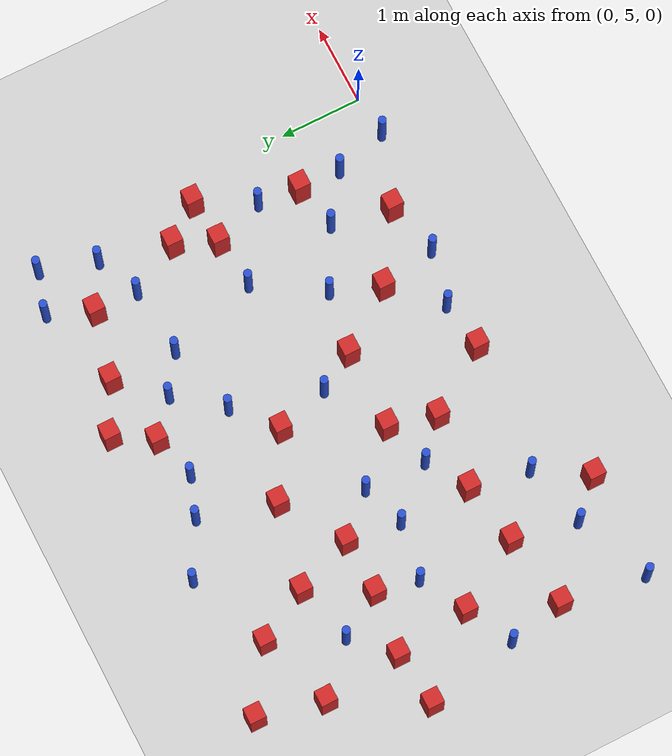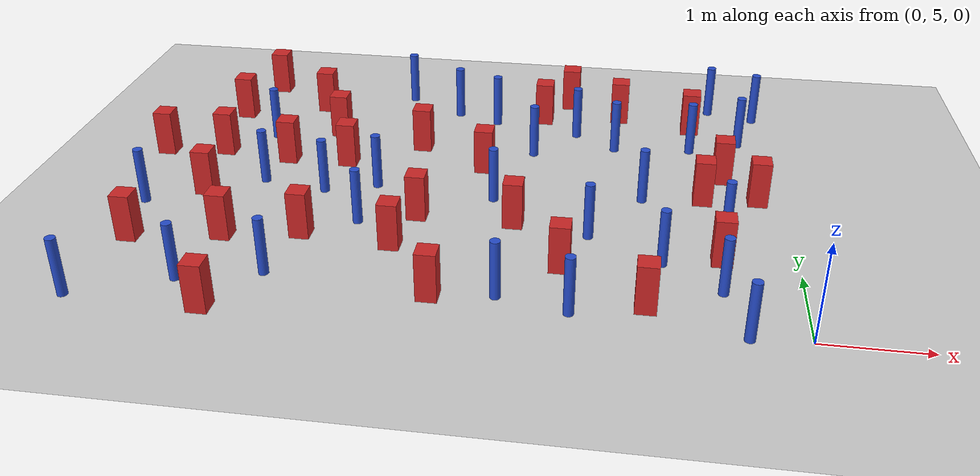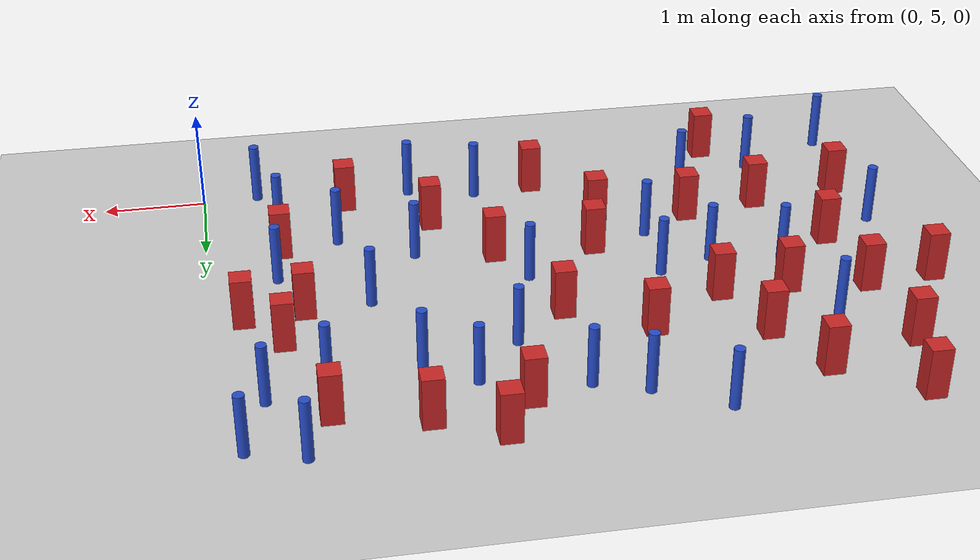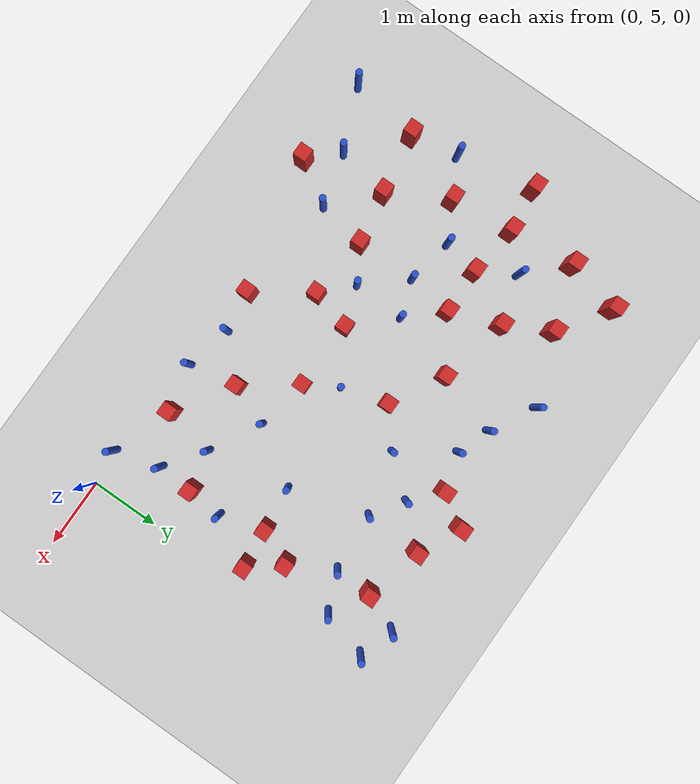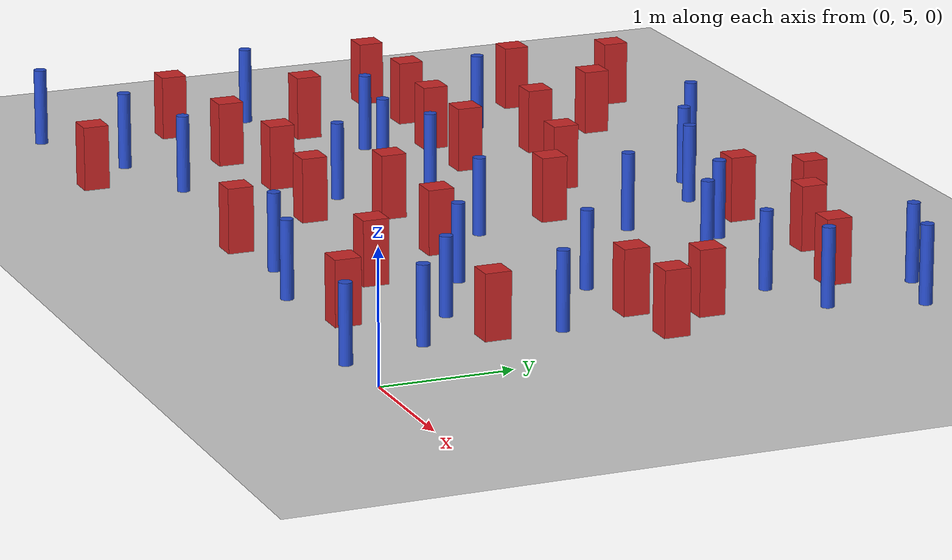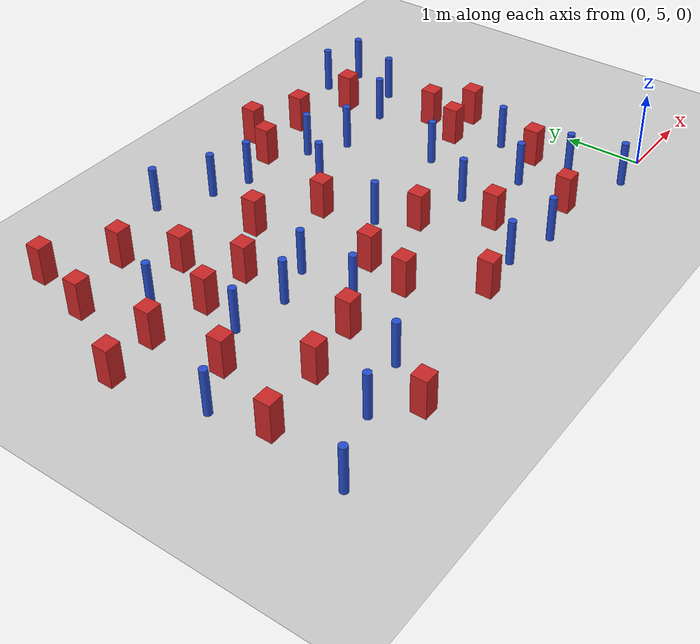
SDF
<sdf version="1.6">
 <world name="default">
  <model name="ground_plane">
   <static>1</static>
   <link name="link">
    <collision name="collision">
     <geometry><plane><normal>0 0 1</normal><size>100 100</size></plane></geometry>
     <surface><friction><ode><mu>100</mu><mu2>50</mu2></ode></friction></surface>
    </collision>
    <visual name="visual">
     <cast_shadows>0</cast_shadows>
     <geometry><plane><normal>0 0 1</normal><size>100 100</size></plane></geometry>
     <material>
      <ambient>1.0 1.0 1.0 1.0</ambient>
      <diffuse>0.8 0.8 0.8 1.0</diffuse>
      <specular>0.01 0.01 0.01 1.000000</specular>
     </material>
    </visual>
   </link>
  </model>
  <model name="square_post_obstacle0">
   <static>true</static>
   <pose>-5.34612675262 4.74920130066 -6.11067671241e-07 -5.50515727128e-06 -8.79689657224e-07 2.37013304536e-05</pose>
   <link name="link">
    <pose>0 0 0.25 0 -0 0</pose>
    <inertial>
     <mass>100</mass>
     <inertia>
      <ixx>0.166667</ixx>
      <ixy>0</ixy>
      <ixz>0</ixz>
      <iyy>0.166667</iyy>
      <iyz>0</iyz>
      <izz>0.166667</izz>
     </inertia>
    </inertial>
    <collision name="collision"><geometry><box><size>.2 .2 .5</size></box></geometry></collision>
    <visual name="visual">
     <geometry><box><size>.2 .2 .5</size></box></geometry>
     <material>
      <script><name>Gazebo/Red</name><uri>file://media/materials/scripts/gazebo.material</uri></script>
     </material>
    </visual>
   </link>
  </model>
  <model name="square_post_obstacle1">
   <static>true</static>
   <pose>-2.77302818829 6.5551887884 -6.11067671241e-07 -5.50515727128e-06 -8.79689657224e-07 2.37013304536e-05</pose>
   <link name="link">
    <pose>0 0 0.25 0 -0 0</pose>
    <inertial>
     <mass>100</mass>
     <inertia>
      <ixx>0.166667</ixx>
      <ixy>0</ixy>
      <ixz>0</ixz>
      <iyy>0.166667</iyy>
      <iyz>0</iyz>
      <izz>0.166667</izz>
     </inertia>
    </inertial>
    <collision name="collision"><geometry><box><size>.2 .2 .5</size></box></geometry></collision>
    <visual name="visual">
     <geometry><box><size>.2 .2 .5</size></box></geometry>
     <material>
      <script><name>Gazebo/Red</name><uri>file://media/materials/scripts/gazebo.material</uri></script>
     </material>
    </visual>
   </link>
  </model>
  <model name="pole_obstacle13">
   <static>true</static>
   <pose>-2.77437427752 5.27815856419 -9.47619616065e-06 5.49618799738e-07 2.3631041406e-07 -1.55090534801e-07</pose>
   <link name="link">
    <pose>0 0 0.3 0 -0 0</pose>
    <inertial>
     <mass>1</mass>
     <inertia><ixx>0.145833</ixx><ixy>0</ixy><ixz>0</ixz><iyy>0.145833</iyy><iyz>0</iyz><izz>0.125</izz></inertia>
    </inertial>
    <collision name="collision">
     <geometry><cylinder><radius>0.05</radius><length>.6</length></cylinder></geometry>
    </collision>
    <visual name="visual">
     <geometry><cylinder><radius>0.05</radius><length>.6</length></cylinder></geometry>
     <material>
      <script><name>Gazebo/Blue</name><uri>file://media/materials/scripts/gazebo.material</uri></script>
     </material>
    </visual>
   </link>
  </model>
  <model name="square_post_obstacle12">
   <static>true</static>
   <pose>-1.43123995148 5.29667746574 -6.11067671241e-07 -5.50515727128e-06 -8.79689657224e-07 2.37013304536e-05</pose>
   <link name="link">
    <pose>0 0 0.25 0 -0 0</pose>
    <inertial>
     <mass>100</mass>
     <inertia>
      <ixx>0.166667</ixx>
      <ixy>0</ixy>
      <ixz>0</ixz>
      <iyy>0.166667</iyy>
      <iyz>0</iyz>
      <izz>0.166667</izz>
     </inertia>
    </inertial>
    <collision name="collision"><geometry><box><size>.2 .2 .5</size></box></geometry></collision>
    <visual name="visual">
     <geometry><box><size>.2 .2 .5</size></box></geometry>
     <material>
      <script><name>Gazebo/Red</name><uri>file://media/materials/scripts/gazebo.material</uri></script>
     </material>
    </visual>
   </link>
  </model>
  <model name="square_post_obstacle15">
   <static>true</static>
   <pose>-5.35787240034 8.94793512764 -6.11067671241e-07 -5.50515727128e-06 -8.79689657224e-07 2.37013304536e-05</pose>
   <link name="link">
    <pose>0 0 0.25 0 -0 0</pose>
    <inertial>
     <mass>100</mass>
     <inertia>
      <ixx>0.166667</ixx>
      <ixy>0</ixy>
      <ixz>0</ixz>
      <iyy>0.166667</iyy>
      <iyz>0</iyz>
      <izz>0.166667</izz>
     </inertia>
    </inertial>
    <collision name="collision"><geometry><box><size>.2 .2 .5</size></box></geometry></collision>
    <visual name="visual">
     <geometry><box><size>.2 .2 .5</size></box></geometry>
     <material>
      <script><name>Gazebo/Red</name><uri>file://media/materials/scripts/gazebo.material</uri></script>
     </material>
    </visual>
   </link>
  </model>
  <model name="pole_obstacle21">
   <static>true</static>
   <pose>-1.29164633985 6.02613737282 -9.47619616065e-06 5.49618799737e-07 2.36310414061e-07 -1.550905348e-07</pose>
   <link name="link">
    <pose>0 0 0.3 0 -0 0</pose>
    <inertial>
     <mass>1</mass>
     <inertia><ixx>0.145833</ixx><ixy>0</ixy><ixz>0</ixz><iyy>0.145833</iyy><iyz>0</iyz><izz>0.125</izz></inertia>
    </inertial>
    <collision name="collision">
     <geometry><cylinder><radius>0.05</radius><length>.6</length></cylinder></geometry>
    </collision>
    <visual name="visual">
     <geometry><cylinder><radius>0.05</radius><length>.6</length></cylinder></geometry>
     <material>
      <script><name>Gazebo/Blue</name><uri>file://media/materials/scripts/gazebo.material</uri></script>
     </material>
    </visual>
   </link>
  </model>
  <model name="square_post_obstacle34">
   <static>true</static>
   <pose>-5.01430489919 8.31222647679 -6.11067671241e-07 -5.50515727128e-06 -8.79689657224e-07 2.37013304536e-05</pose>
   <link name="link">
    <pose>0 0 0.25 0 -0 0</pose>
    <inertial>
     <mass>100</mass>
     <inertia>
      <ixx>0.166667</ixx>
      <ixy>0</ixy>
      <ixz>0</ixz>
      <iyy>0.166667</iyy>
      <iyz>0</iyz>
      <izz>0.166667</izz>
     </inertia>
    </inertial>
    <collision name="collision"><geometry><box><size>.2 .2 .5</size></box></geometry></collision>
    <visual name="visual">
     <geometry><box><size>.2 .2 .5</size></box></geometry>
     <material>
      <script><name>Gazebo/Red</name><uri>file://media/materials/scripts/gazebo.material</uri></script>
     </material>
    </visual>
   </link>
  </model>
  <model name="pole_obstacle52">
   <static>true</static>
   <pose>-0.45498013856 8.62824395358 -9.47619616065e-06 5.49618799737e-07 2.36310414049e-07 -1.55090534807e-07</pose>
   <link name="link">
    <pose>0 0 0.3 0 -0 0</pose>
    <inertial>
     <mass>1</mass>
     <inertia><ixx>0.145833</ixx><ixy>0</ixy><ixz>0</ixz><iyy>0.145833</iyy><iyz>0</iyz><izz>0.125</izz></inertia>
    </inertial>
    <collision name="collision">
     <geometry><cylinder><radius>0.05</radius><length>.6</length></cylinder></geometry>
    </collision>
    <visual name="visual">
     <geometry><cylinder><radius>0.05</radius><length>.6</length></cylinder></geometry>
     <material>
      <script><name>Gazebo/Blue</name><uri>file://media/materials/scripts/gazebo.material</uri></script>
     </material>
    </visual>
   </link>
  </model>
  <model name="pole_obstacle56">
   <static>true</static>
   <pose>-0.666703236352 6.658566301 -9.47619616065e-06 5.49618799737e-07 2.36310414065e-07 -1.55090534796e-07</pose>
   <link name="link">
    <pose>0 0 0.3 0 -0 0</pose>
    <inertial>
     <mass>1</mass>
     <inertia><ixx>0.145833</ixx><ixy>0</ixy><ixz>0</ixz><iyy>0.145833</iyy><iyz>0</iyz><izz>0.125</izz></inertia>
    </inertial>
    <collision name="collision">
     <geometry><cylinder><radius>0.05</radius><length>.6</length></cylinder></geometry>
    </collision>
    <visual name="visual">
     <geometry><cylinder><radius>0.05</radius><length>.6</length></cylinder></geometry>
     <material>
      <script><name>Gazebo/Blue</name><uri>file://media/materials/scripts/gazebo.material</uri></script>
     </material>
    </visual>
   </link>
  </model>
  <model name="pole_obstacle59">
   <static>true</static>
   <pose>-3.24799712277 8.82798915119 -9.47619616065e-06 5.49618799738e-07 2.36310414059e-07 -1.55090534802e-07</pose>
   <link name="link">
    <pose>0 0 0.3 0 -0 0</pose>
    <inertial>
     <mass>1</mass>
     <inertia><ixx>0.145833</ixx><ixy>0</ixy><ixz>0</ixz><iyy>0.145833</iyy><iyz>0</iyz><izz>0.125</izz></inertia>
    </inertial>
    <collision name="collision">
     <geometry><cylinder><radius>0.05</radius><length>.6</length></cylinder></geometry>
    </collision>
    <visual name="visual">
     <geometry><cylinder><radius>0.05</radius><length>.6</length></cylinder></geometry>
     <material>
      <script><name>Gazebo/Blue</name><uri>file://media/materials/scripts/gazebo.material</uri></script>
     </material>
    </visual>
   </link>
  </model>
  <model name="pole_obstacle63">
   <static>true</static>
   <pose>-3.72546606335 9.00201189004 -9.47619616065e-06 5.49618799738e-07 2.36310414059e-07 -1.55090534802e-07</pose>
   <link name="link">
    <pose>0 0 0.3 0 -0 0</pose>
    <inertial>
     <mass>1</mass>
     <inertia><ixx>0.145833</ixx><ixy>0</ixy><ixz>0</ixz><iyy>0.145833</iyy><iyz>0</iyz><izz>0.125</izz></inertia>
    </inertial>
    <collision name="collision">
     <geometry><cylinder><radius>0.05</radius><length>.6</length></cylinder></geometry>
    </collision>
    <visual name="visual">
     <geometry><cylinder><radius>0.05</radius><length>.6</length></cylinder></geometry>
     <material>
      <script><name>Gazebo/Blue</name><uri>file://media/materials/scripts/gazebo.material</uri></script>
     </material>
    </visual>
   </link>
  </model>
  <model name="square_post_obstacle58">
   <static>true</static>
   <pose>-3.9945290186 8.08801539437 -6.11067671241e-07 -5.50515727128e-06 -8.79689657224e-07 2.37013304536e-05</pose>
   <link name="link">
    <pose>0 0 0.25 0 -0 0</pose>
    <inertial>
     <mass>100</mass>
     <inertia>
      <ixx>0.166667</ixx>
      <ixy>0</ixy>
      <ixz>0</ixz>
      <iyy>0.166667</iyy>
      <iyz>0</iyz>
      <izz>0.166667</izz>
     </inertia>
    </inertial>
    <collision name="collision"><geometry><box><size>.2 .2 .5</size></box></geometry></collision>
    <visual name="visual">
     <geometry><box><size>.2 .2 .5</size></box></geometry>
     <material>
      <script><name>Gazebo/Red</name><uri>file://media/materials/scripts/gazebo.material</uri></script>
     </material>
    </visual>
   </link>
  </model>
  <model name="square_post_obstacle61">
   <static>true</static>
   <pose>-2.24261961663 5.82881740338 -6.11067671241e-07 -5.50515727128e-06 -8.79689657224e-07 2.37013304536e-05</pose>
   <link name="link">
    <pose>0 0 0.25 0 -0 0</pose>
    <inertial>
     <mass>100</mass>
     <inertia>
      <ixx>0.166667</ixx>
      <ixy>0</ixy>
      <ixz>0</ixz>
      <iyy>0.166667</iyy>
      <iyz>0</iyz>
      <izz>0.166667</izz>
     </inertia>
    </inertial>
    <collision name="collision"><geometry><box><size>.2 .2 .5</size></box></geometry></collision>
    <visual name="visual">
     <geometry><box><size>.2 .2 .5</size></box></geometry>
     <material>
      <script><name>Gazebo/Red</name><uri>file://media/materials/scripts/gazebo.material</uri></script>
     </material>
    </visual>
   </link>
  </model>
  <model name="pole_obstacle72">
   <static>true</static>
   <pose>-0.54581152563 4.97030070572 -9.47619616065e-06 5.49618799737e-07 2.36310414069e-07 -1.55090534794e-07</pose>
   <link name="link">
    <pose>0 0 0.3 0 -0 0</pose>
    <inertial>
     <mass>1</mass>
     <inertia><ixx>0.145833</ixx><ixy>0</ixy><ixz>0</ixz><iyy>0.145833</iyy><iyz>0</iyz><izz>0.125</izz></inertia>
    </inertial>
    <collision name="collision">
     <geometry><cylinder><radius>0.05</radius><length>.6</length></cylinder></geometry>
    </collision>
    <visual name="visual">
     <geometry><cylinder><radius>0.05</radius><length>.6</length></cylinder></geometry>
     <material>
      <script><name>Gazebo/Blue</name><uri>file://media/materials/scripts/gazebo.material</uri></script>
     </material>
    </visual>
   </link>
  </model>
  <model name="square_post_obstacle68">
   <static>true</static>
   <pose>-0.665074424323 7.77180806477 -6.11067671241e-07 -5.50515727128e-06 -8.79689657224e-07 2.37013304536e-05</pose>
   <link name="link">
    <pose>0 0 0.25 0 -0 0</pose>
    <inertial>
     <mass>100</mass>
     <inertia>
      <ixx>0.166667</ixx>
      <ixy>0</ixy>
      <ixz>0</ixz>
      <iyy>0.166667</iyy>
      <iyz>0</iyz>
      <izz>0.166667</izz>
     </inertia>
    </inertial>
    <collision name="collision"><geometry><box><size>.2 .2 .5</size></box></geometry></collision>
    <visual name="visual">
     <geometry><box><size>.2 .2 .5</size></box></geometry>
     <material>
      <script><name>Gazebo/Red</name><uri>file://media/materials/scripts/gazebo.material</uri></script>
     </material>
    </visual>
   </link>
  </model>
  <model name="pole_obstacle87">
   <static>true</static>
   <pose>-5.5234060279 7.06890549438 -9.47619616065e-06 5.49618799737e-07 2.36310414037e-07 -1.55090534814e-07</pose>
   <link name="link">
    <pose>0 0 0.3 0 -0 0</pose>
    <inertial>
     <mass>1</mass>
     <inertia><ixx>0.145833</ixx><ixy>0</ixy><ixz>0</ixz><iyy>0.145833</iyy><iyz>0</iyz><izz>0.125</izz></inertia>
    </inertial>
    <collision name="collision">
     <geometry><cylinder><radius>0.05</radius><length>.6</length></cylinder></geometry>
    </collision>
    <visual name="visual">
     <geometry><cylinder><radius>0.05</radius><length>.6</length></cylinder></geometry>
     <material>
      <script><name>Gazebo/Blue</name><uri>file://media/materials/scripts/gazebo.material</uri></script>
     </material>
    </visual>
   </link>
  </model>
  <model name="square_post_obstacle75">
   <static>true</static>
   <pose>-5.58406208628 5.93397972819 -6.11067671241e-07 -5.50515727128e-06 -8.79689657224e-07 2.37013304536e-05</pose>
   <link name="link">
    <pose>0 0 0.25 0 -0 0</pose>
    <inertial>
     <mass>100</mass>
     <inertia>
      <ixx>0.166667</ixx>
      <ixy>0</ixy>
      <ixz>0</ixz>
      <iyy>0.166667</iyy>
      <iyz>0</iyz>
      <izz>0.166667</izz>
     </inertia>
    </inertial>
    <collision name="collision"><geometry><box><size>.2 .2 .5</size></box></geometry></collision>
    <visual name="visual">
     <geometry><box><size>.2 .2 .5</size></box></geometry>
     <material>
      <script><name>Gazebo/Red</name><uri>file://media/materials/scripts/gazebo.material</uri></script>
     </material>
    </visual>
   </link>
  </model>
  <model name="square_post_obstacle79">
   <static>true</static>
   <pose>-6.27440680513 8.64466539857 -6.11067671241e-07 -5.50515727128e-06 -8.79689657224e-07 2.37013304536e-05</pose>
   <link name="link">
    <pose>0 0 0.25 0 -0 0</pose>
    <inertial>
     <mass>100</mass>
     <inertia>
      <ixx>0.166667</ixx>
      <ixy>0</ixy>
      <ixz>0</ixz>
      <iyy>0.166667</iyy>
      <iyz>0</iyz>
      <izz>0.166667</izz>
     </inertia>
    </inertial>
    <collision name="collision"><geometry><box><size>.2 .2 .5</size></box></geometry></collision>
    <visual name="visual">
     <geometry><box><size>.2 .2 .5</size></box></geometry>
     <material>
      <script><name>Gazebo/Red</name><uri>file://media/materials/scripts/gazebo.material</uri></script>
     </material>
    </visual>
   </link>
  </model>
  <model name="pole_obstacle92">
   <static>true</static>
   <pose>-4.9635434888 5.35195731599 -9.47619616065e-06 5.49618799737e-07 2.36310414037e-07 -1.55090534814e-07</pose>
   <link name="link">
    <pose>0 0 0.3 0 -0 0</pose>
    <inertial>
     <mass>1</mass>
     <inertia><ixx>0.145833</ixx><ixy>0</ixy><ixz>0</ixz><iyy>0.145833</iyy><iyz>0</iyz><izz>0.125</izz></inertia>
    </inertial>
    <collision name="collision">
     <geometry><cylinder><radius>0.05</radius><length>.6</length></cylinder></geometry>
    </collision>
    <visual name="visual">
     <geometry><cylinder><radius>0.05</radius><length>.6</length></cylinder></geometry>
     <material>
      <script><name>Gazebo/Blue</name><uri>file://media/materials/scripts/gazebo.material</uri></script>
     </material>
    </visual>
   </link>
  </model>
  <model name="pole_obstacle95">
   <static>true</static>
   <pose>-2.0999683069 5.12321069864 -9.47619616065e-06 5.49618799738e-07 2.3631041406e-07 -1.55090534801e-07</pose>
   <link name="link">
    <pose>0 0 0.3 0 -0 0</pose>
    <inertial>
     <mass>1</mass>
     <inertia><ixx>0.145833</ixx><ixy>0</ixy><ixz>0</ixz><iyy>0.145833</iyy><iyz>0</iyz><izz>0.125</izz></inertia>
    </inertial>
    <collision name="collision">
     <geometry><cylinder><radius>0.05</radius><length>.6</length></cylinder></geometry>
    </collision>
    <visual name="visual">
     <geometry><cylinder><radius>0.05</radius><length>.6</length></cylinder></geometry>
     <material>
      <script><name>Gazebo/Blue</name><uri>file://media/materials/scripts/gazebo.material</uri></script>
     </material>
    </visual>
   </link>
  </model>
  <model name="square_post_obstacle92">
   <static>true</static>
   <pose>-0.319196821301 7.34052091592 -6.11067671241e-07 -5.50515727128e-06 -8.79689657224e-07 2.37013304536e-05</pose>
   <link name="link">
    <pose>0 0 0.25 0 -0 0</pose>
    <inertial>
     <mass>100</mass>
     <inertia>
      <ixx>0.166667</ixx>
      <ixy>0</ixy>
      <ixz>0</ixz>
      <iyy>0.166667</iyy>
      <iyz>0</iyz>
      <izz>0.166667</izz>
     </inertia>
    </inertial>
    <collision name="collision"><geometry><box><size>.2 .2 .5</size></box></geometry></collision>
    <visual name="visual">
     <geometry><box><size>.2 .2 .5</size></box></geometry>
     <material>
      <script><name>Gazebo/Red</name><uri>file://media/materials/scripts/gazebo.material</uri></script>
     </material>
    </visual>
   </link>
  </model>
  <model name="square_post_obstacle94">
   <static>true</static>
   <pose>-6.08649874695 9.43766872733 -6.11067671241e-07 -5.50515727128e-06 -8.79689657224e-07 2.37013304536e-05</pose>
   <link name="link">
    <pose>0 0 0.25 0 -0 0</pose>
    <inertial>
     <mass>100</mass>
     <inertia>
      <ixx>0.166667</ixx>
      <ixy>0</ixy>
      <ixz>0</ixz>
      <iyy>0.166667</iyy>
      <iyz>0</iyz>
      <izz>0.166667</izz>
     </inertia>
    </inertial>
    <collision name="collision"><geometry><box><size>.2 .2 .5</size></box></geometry></collision>
    <visual name="visual">
     <geometry><box><size>.2 .2 .5</size></box></geometry>
     <material>
      <script><name>Gazebo/Red</name><uri>file://media/materials/scripts/gazebo.material</uri></script>
     </material>
    </visual>
   </link>
  </model>
  <model name="square_post_obstacle100">
   <static>true</static>
   <pose>-0.731115785691 6.15102334332 -6.11067671241e-07 -5.50515727128e-06 -8.79689657224e-07 2.37013304536e-05</pose>
   <link name="link">
    <pose>0 0 0.25 0 -0 0</pose>
    <inertial>
     <mass>100</mass>
     <inertia>
      <ixx>0.166667</ixx>
      <ixy>0</ixy>
      <ixz>0</ixz>
      <iyy>0.166667</iyy>
      <iyz>0</iyz>
      <izz>0.166667</izz>
     </inertia>
    </inertial>
    <collision name="collision"><geometry><box><size>.2 .2 .5</size></box></geometry></collision>
    <visual name="visual">
     <geometry><box><size>.2 .2 .5</size></box></geometry>
     <material>
      <script><name>Gazebo/Red</name><uri>file://media/materials/scripts/gazebo.material</uri></script>
     </material>
    </visual>
   </link>
  </model>
  <model name="pole_obstacle111">
   <static>true</static>
   <pose>-3.03837720684 7.00998301146 -9.4761961606e-06 5.49618799729e-07 2.36310414006e-07 -1.55090534822e-07</pose>
   <link name="link">
    <pose>0 0 0.3 0 -0 0</pose>
    <inertial>
     <mass>1</mass>
     <inertia><ixx>0.145833</ixx><ixy>0</ixy><ixz>0</ixz><iyy>0.145833</iyy><iyz>0</iyz><izz>0.125</izz></inertia>
    </inertial>
    <collision name="collision">
     <geometry><cylinder><radius>0.05</radius><length>.6</length></cylinder></geometry>
    </collision>
    <visual name="visual">
     <geometry><cylinder><radius>0.05</radius><length>.6</length></cylinder></geometry>
     <material>
      <script><name>Gazebo/Blue</name><uri>file://media/materials/scripts/gazebo.material</uri></script>
     </material>
    </visual>
   </link>
  </model>
  <model name="square_post_obstacle108">
   <static>true</static>
   <pose>-4.74540665573 7.60258451405 -6.11067671241e-07 -5.50515727128e-06 -8.79689657224e-07 2.37013304536e-05</pose>
   <link name="link">
    <pose>0 0 0.25 0 -0 0</pose>
    <inertial>
     <mass>100</mass>
     <inertia>
      <ixx>0.166667</ixx>
      <ixy>0</ixy>
      <ixz>0</ixz>
      <iyy>0.166667</iyy>
      <iyz>0</iyz>
      <izz>0.166667</izz>
     </inertia>
    </inertial>
    <collision name="collision"><geometry><box><size>.2 .2 .5</size></box></geometry></collision>
    <visual name="visual">
     <geometry><box><size>.2 .2 .5</size></box></geometry>
     <material>
      <script><name>Gazebo/Red</name><uri>file://media/materials/scripts/gazebo.material</uri></script>
     </material>
    </visual>
   </link>
  </model>
  <model name="square_post_obstacle110">
   <static>true</static>
   <pose>-4.82329442298 6.07336075135 -6.11067671241e-07 -5.50515727128e-06 -8.79689657224e-07 2.37013304536e-05</pose>
   <link name="link">
    <pose>0 0 0.25 0 -0 0</pose>
    <inertial>
     <mass>100</mass>
     <inertia>
      <ixx>0.166667</ixx>
      <ixy>0</ixy>
      <ixz>0</ixz>
      <iyy>0.166667</iyy>
      <iyz>0</iyz>
      <izz>0.166667</izz>
     </inertia>
    </inertial>
    <collision name="collision"><geometry><box><size>.2 .2 .5</size></box></geometry></collision>
    <visual name="visual">
     <geometry><box><size>.2 .2 .5</size></box></geometry>
     <material>
      <script><name>Gazebo/Red</name><uri>file://media/materials/scripts/gazebo.material</uri></script>
     </material>
    </visual>
   </link>
  </model>
  <model name="pole_obstacle113">
   <static>true</static>
   <pose>-4.32916836277 6.37486392104 -9.47619616065e-06 5.49618799737e-07 2.36310414037e-07 -1.55090534814e-07</pose>
   <link name="link">
    <pose>0 0 0.3 0 -0 0</pose>
    <inertial>
     <mass>1</mass>
     <inertia><ixx>0.145833</ixx><ixy>0</ixy><ixz>0</ixz><iyy>0.145833</iyy><iyz>0</iyz><izz>0.125</izz></inertia>
    </inertial>
    <collision name="collision">
     <geometry><cylinder><radius>0.05</radius><length>.6</length></cylinder></geometry>
    </collision>
    <visual name="visual">
     <geometry><cylinder><radius>0.05</radius><length>.6</length></cylinder></geometry>
     <material>
      <script><name>Gazebo/Blue</name><uri>file://media/materials/scripts/gazebo.material</uri></script>
     </material>
    </visual>
   </link>
  </model>
  <model name="square_post_obstacle113">
   <static>true</static>
   <pose>-0.883907278568 7.28142022288 -6.11067671241e-07 -5.50515727128e-06 -8.79689657224e-07 2.37013304536e-05</pose>
   <link name="link">
    <pose>0 0 0.25 0 -0 0</pose>
    <inertial>
     <mass>100</mass>
     <inertia>
      <ixx>0.166667</ixx>
      <ixy>0</ixy>
      <ixz>0</ixz>
      <iyy>0.166667</iyy>
      <iyz>0</iyz>
      <izz>0.166667</izz>
     </inertia>
    </inertial>
    <collision name="collision"><geometry><box><size>.2 .2 .5</size></box></geometry></collision>
    <visual name="visual">
     <geometry><box><size>.2 .2 .5</size></box></geometry>
     <material>
      <script><name>Gazebo/Red</name><uri>file://media/materials/scripts/gazebo.material</uri></script>
     </material>
    </visual>
   </link>
  </model>
  <model name="pole_obstacle117">
   <static>true</static>
   <pose>-1.50502706158 7.20994260785 -9.47619616065e-06 5.49618799737e-07 2.36310414061e-07 -1.550905348e-07</pose>
   <link name="link">
    <pose>0 0 0.3 0 -0 0</pose>
    <inertial>
     <mass>1</mass>
     <inertia><ixx>0.145833</ixx><ixy>0</ixy><ixz>0</ixz><iyy>0.145833</iyy><iyz>0</iyz><izz>0.125</izz></inertia>
    </inertial>
    <collision name="collision">
     <geometry><cylinder><radius>0.05</radius><length>.6</length></cylinder></geometry>
    </collision>
    <visual name="visual">
     <geometry><cylinder><radius>0.05</radius><length>.6</length></cylinder></geometry>
     <material>
      <script><name>Gazebo/Blue</name><uri>file://media/materials/scripts/gazebo.material</uri></script>
     </material>
    </visual>
   </link>
  </model>
  <model name="square_post_obstacle121">
   <static>true</static>
   <pose>-3.75538588558 6.57071600293 -6.11067671241e-07 -5.50515727128e-06 -8.79689657224e-07 2.37013304536e-05</pose>
   <link name="link">
    <pose>0 0 0.25 0 -0 0</pose>
    <inertial>
     <mass>100</mass>
     <inertia>
      <ixx>0.166667</ixx>
      <ixy>0</ixy>
      <ixz>0</ixz>
      <iyy>0.166667</iyy>
      <iyz>0</iyz>
      <izz>0.166667</izz>
     </inertia>
    </inertial>
    <collision name="collision"><geometry><box><size>.2 .2 .5</size></box></geometry></collision>
    <visual name="visual">
     <geometry><box><size>.2 .2 .5</size></box></geometry>
     <material>
      <script><name>Gazebo/Red</name><uri>file://media/materials/scripts/gazebo.material</uri></script>
     </material>
    </visual>
   </link>
  </model>
  <model name="pole_obstacle122">
   <static>true</static>
   <pose>-5.74612713085 5.14560535557 -9.47619616065e-06 5.49618799737e-07 2.36310414037e-07 -1.55090534814e-07</pose>
   <link name="link">
    <pose>0 0 0.3 0 -0 0</pose>
    <inertial>
     <mass>1</mass>
     <inertia><ixx>0.145833</ixx><ixy>0</ixy><ixz>0</ixz><iyy>0.145833</iyy><iyz>0</iyz><izz>0.125</izz></inertia>
    </inertial>
    <collision name="collision">
     <geometry><cylinder><radius>0.05</radius><length>.6</length></cylinder></geometry>
    </collision>
    <visual name="visual">
     <geometry><cylinder><radius>0.05</radius><length>.6</length></cylinder></geometry>
     <material>
      <script><name>Gazebo/Blue</name><uri>file://media/materials/scripts/gazebo.material</uri></script>
     </material>
    </visual>
   </link>
  </model>
  <model name="pole_obstacle123">
   <static>true</static>
   <pose>-6.6280284042 6.47120384067 -9.47619616065e-06 5.49618799737e-07 2.36310414037e-07 -1.55090534814e-07</pose>
   <link name="link">
    <pose>0 0 0.3 0 -0 0</pose>
    <inertial>
     <mass>1</mass>
     <inertia><ixx>0.145833</ixx><ixy>0</ixy><ixz>0</ixz><iyy>0.145833</iyy><iyz>0</iyz><izz>0.125</izz></inertia>
    </inertial>
    <collision name="collision">
     <geometry><cylinder><radius>0.05</radius><length>.6</length></cylinder></geometry>
    </collision>
    <visual name="visual">
     <geometry><cylinder><radius>0.05</radius><length>.6</length></cylinder></geometry>
     <material>
      <script><name>Gazebo/Blue</name><uri>file://media/materials/scripts/gazebo.material</uri></script>
     </material>
    </visual>
   </link>
  </model>
  <model name="pole_obstacle124">
   <static>true</static>
   <pose>-1.83997400071 8.32374013518 -9.47619616065e-06 5.49618799737e-07 2.36310414046e-07 -1.55090534809e-07</pose>
   <link name="link">
    <pose>0 0 0.3 0 -0 0</pose>
    <inertial>
     <mass>1</mass>
     <inertia><ixx>0.145833</ixx><ixy>0</ixy><ixz>0</ixz><iyy>0.145833</iyy><iyz>0</iyz><izz>0.125</izz></inertia>
    </inertial>
    <collision name="collision">
     <geometry><cylinder><radius>0.05</radius><length>.6</length></cylinder></geometry>
    </collision>
    <visual name="visual">
     <geometry><cylinder><radius>0.05</radius><length>.6</length></cylinder></geometry>
     <material>
      <script><name>Gazebo/Blue</name><uri>file://media/materials/scripts/gazebo.material</uri></script>
     </material>
    </visual>
   </link>
  </model>
  <model name="pole_obstacle125">
   <static>true</static>
   <pose>-2.29205378037 8.62879628467 -9.4761961606e-06 5.49618799729e-07 2.36310414e-07 -1.55090534824e-07</pose>
   <link name="link">
    <pose>0 0 0.3 0 -0 0</pose>
    <inertial>
     <mass>1</mass>
     <inertia><ixx>0.145833</ixx><ixy>0</ixy><ixz>0</ixz><iyy>0.145833</iyy><iyz>0</iyz><izz>0.125</izz></inertia>
    </inertial>
    <collision name="collision">
     <geometry><cylinder><radius>0.05</radius><length>.6</length></cylinder></geometry>
    </collision>
    <visual name="visual">
     <geometry><cylinder><radius>0.05</radius><length>.6</length></cylinder></geometry>
     <material>
      <script><name>Gazebo/Blue</name><uri>file://media/materials/scripts/gazebo.material</uri></script>
     </material>
    </visual>
   </link>
  </model>
  <model name="square_post_obstacle122">
   <static>true</static>
   <pose>-0.992078976033 8.93287342864 -6.11067671241e-07 -5.50515727128e-06 -8.79689657224e-07 2.37013304536e-05</pose>
   <link name="link">
    <pose>0 0 0.25 0 -0 0</pose>
    <inertial>
     <mass>100</mass>
     <inertia>
      <ixx>0.166667</ixx>
      <ixy>0</ixy>
      <ixz>0</ixz>
      <iyy>0.166667</iyy>
      <iyz>0</iyz>
      <izz>0.166667</izz>
     </inertia>
    </inertial>
    <collision name="collision"><geometry><box><size>.2 .2 .5</size></box></geometry></collision>
    <visual name="visual">
     <geometry><box><size>.2 .2 .5</size></box></geometry>
     <material>
      <script><name>Gazebo/Red</name><uri>file://media/materials/scripts/gazebo.material</uri></script>
     </material>
    </visual>
   </link>
  </model>
  <model name="square_post_obstacle125">
   <static>true</static>
   <pose>-6.17310354879 7.68201286655 -6.11067671241e-07 -5.50515727128e-06 -8.79689657224e-07 2.37013304536e-05</pose>
   <link name="link">
    <pose>0 0 0.25 0 -0 0</pose>
    <inertial>
     <mass>100</mass>
     <inertia>
      <ixx>0.166667</ixx>
      <ixy>0</ixy>
      <ixz>0</ixz>
      <iyy>0.166667</iyy>
      <iyz>0</iyz>
      <izz>0.166667</izz>
     </inertia>
    </inertial>
    <collision name="collision"><geometry><box><size>.2 .2 .5</size></box></geometry></collision>
    <visual name="visual">
     <geometry><box><size>.2 .2 .5</size></box></geometry>
     <material>
      <script><name>Gazebo/Red</name><uri>file://media/materials/scripts/gazebo.material</uri></script>
     </material>
    </visual>
   </link>
  </model>
  <model name="square_post_obstacle129">
   <static>true</static>
   <pose>-3.37548876215 5.2052947591 -6.11067671241e-07 -5.50515727128e-06 -8.79689657224e-07 2.37013304536e-05</pose>
   <link name="link">
    <pose>0 0 0.25 0 -0 0</pose>
    <inertial>
     <mass>100</mass>
     <inertia>
      <ixx>0.166667</ixx>
      <ixy>0</ixy>
      <ixz>0</ixz>
      <iyy>0.166667</iyy>
      <iyz>0</iyz>
      <izz>0.166667</izz>
     </inertia>
    </inertial>
    <collision name="collision"><geometry><box><size>.2 .2 .5</size></box></geometry></collision>
    <visual name="visual">
     <geometry><box><size>.2 .2 .5</size></box></geometry>
     <material>
      <script><name>Gazebo/Red</name><uri>file://media/materials/scripts/gazebo.material</uri></script>
     </material>
    </visual>
   </link>
  </model>
  <model name="square_post_obstacle133">
   <static>true</static>
   <pose>-3.9041747663 5.99020843724 -6.11067671241e-07 -5.50515727128e-06 -8.79689657224e-07 2.37013304536e-05</pose>
   <link name="link">
    <pose>0 0 0.25 0 -0 0</pose>
    <inertial>
     <mass>100</mass>
     <inertia>
      <ixx>0.166667</ixx>
      <ixy>0</ixy>
      <ixz>0</ixz>
      <iyy>0.166667</iyy>
      <iyz>0</iyz>
      <izz>0.166667</izz>
     </inertia>
    </inertial>
    <collision name="collision"><geometry><box><size>.2 .2 .5</size></box></geometry></collision>
    <visual name="visual">
     <geometry><box><size>.2 .2 .5</size></box></geometry>
     <material>
      <script><name>Gazebo/Red</name><uri>file://media/materials/scripts/gazebo.material</uri></script>
     </material>
    </visual>
   </link>
  </model>
  <model name="pole_obstacle137">
   <static>true</static>
   <pose>-0.24775355953 9.30731996349 -9.47619616065e-06 5.49618799737e-07 2.36310414035e-07 -1.55090534816e-07</pose>
   <link name="link">
    <pose>0 0 0.3 0 -0 0</pose>
    <inertial>
     <mass>1</mass>
     <inertia><ixx>0.145833</ixx><ixy>0</ixy><ixz>0</ixz><iyy>0.145833</iyy><iyz>0</iyz><izz>0.125</izz></inertia>
    </inertial>
    <collision name="collision">
     <geometry><cylinder><radius>0.05</radius><length>.6</length></cylinder></geometry>
    </collision>
    <visual name="visual">
     <geometry><cylinder><radius>0.05</radius><length>.6</length></cylinder></geometry>
     <material>
      <script><name>Gazebo/Blue</name><uri>file://media/materials/scripts/gazebo.material</uri></script>
     </material>
    </visual>
   </link>
  </model>
  <model name="square_post_obstacle137">
   <static>true</static>
   <pose>-3.23130330347 7.66294497339 -6.11067671241e-07 -5.50515727128e-06 -8.79689657224e-07 2.37013304536e-05</pose>
   <link name="link">
    <pose>0 0 0.25 0 -0 0</pose>
    <inertial>
     <mass>100</mass>
     <inertia>
      <ixx>0.166667</ixx>
      <ixy>0</ixy>
      <ixz>0</ixz>
      <iyy>0.166667</iyy>
      <iyz>0</iyz>
      <izz>0.166667</izz>
     </inertia>
    </inertial>
    <collision name="collision"><geometry><box><size>.2 .2 .5</size></box></geometry></collision>
    <visual name="visual">
     <geometry><box><size>.2 .2 .5</size></box></geometry>
     <material>
      <script><name>Gazebo/Red</name><uri>file://media/materials/scripts/gazebo.material</uri></script>
     </material>
    </visual>
   </link>
  </model>
  <model name="pole_obstacle145">
   <static>true</static>
   <pose>-4.36078542825 9.35396799949 -9.47619616065e-06 5.49618799737e-07 2.36310414065e-07 -1.55090534796e-07</pose>
   <link name="link">
    <pose>0 0 0.3 0 -0 0</pose>
    <inertial>
     <mass>1</mass>
     <inertia><ixx>0.145833</ixx><ixy>0</ixy><ixz>0</ixz><iyy>0.145833</iyy><iyz>0</iyz><izz>0.125</izz></inertia>
    </inertial>
    <collision name="collision">
     <geometry><cylinder><radius>0.05</radius><length>.6</length></cylinder></geometry>
    </collision>
    <visual name="visual">
     <geometry><cylinder><radius>0.05</radius><length>.6</length></cylinder></geometry>
     <material>
      <script><name>Gazebo/Blue</name><uri>file://media/materials/scripts/gazebo.material</uri></script>
     </material>
    </visual>
   </link>
  </model>
  <model name="pole_obstacle151">
   <static>true</static>
   <pose>-0.999474573277 8.3974080418 -9.47619616065e-06 5.49618799737e-07 2.36310414038e-07 -1.55090534814e-07</pose>
   <link name="link">
    <pose>0 0 0.3 0 -0 0</pose>
    <inertial>
     <mass>1</mass>
     <inertia><ixx>0.145833</ixx><ixy>0</ixy><ixz>0</ixz><iyy>0.145833</iyy><iyz>0</iyz><izz>0.125</izz></inertia>
    </inertial>
    <collision name="collision">
     <geometry><cylinder><radius>0.05</radius><length>.6</length></cylinder></geometry>
    </collision>
    <visual name="visual">
     <geometry><cylinder><radius>0.05</radius><length>.6</length></cylinder></geometry>
     <material>
      <script><name>Gazebo/Blue</name><uri>file://media/materials/scripts/gazebo.material</uri></script>
     </material>
    </visual>
   </link>
  </model>
  <model name="pole_obstacle155">
   <static>true</static>
   <pose>-5.73879171354 8.116093438 -9.47619616065e-06 5.49618799737e-07 2.36310414065e-07 -1.55090534796e-07</pose>
   <link name="link">
    <pose>0 0 0.3 0 -0 0</pose>
    <inertial>
     <mass>1</mass>
     <inertia><ixx>0.145833</ixx><ixy>0</ixy><ixz>0</ixz><iyy>0.145833</iyy><iyz>0</iyz><izz>0.125</izz></inertia>
    </inertial>
    <collision name="collision">
     <geometry><cylinder><radius>0.05</radius><length>.6</length></cylinder></geometry>
    </collision>
    <visual name="visual">
     <geometry><cylinder><radius>0.05</radius><length>.6</length></cylinder></geometry>
     <material>
      <script><name>Gazebo/Blue</name><uri>file://media/materials/scripts/gazebo.material</uri></script>
     </material>
    </visual>
   </link>
  </model>
  <model name="square_post_obstacle166">
   <static>true</static>
   <pose>-1.81674675287 9.13718525465 -6.11067671241e-07 -5.50515727128e-06 -8.79689657224e-07 2.37013304536e-05</pose>
   <link name="link">
    <pose>0 0 0.25 0 -0 0</pose>
    <inertial>
     <mass>100</mass>
     <inertia>
      <ixx>0.166667</ixx>
      <ixy>0</ixy>
      <ixz>0</ixz>
      <iyy>0.166667</iyy>
      <iyz>0</iyz>
      <izz>0.166667</izz>
     </inertia>
    </inertial>
    <collision name="collision"><geometry><box><size>.2 .2 .5</size></box></geometry></collision>
    <visual name="visual">
     <geometry><box><size>.2 .2 .5</size></box></geometry>
     <material>
      <script><name>Gazebo/Red</name><uri>file://media/materials/scripts/gazebo.material</uri></script>
     </material>
    </visual>
   </link>
  </model>
  <model name="pole_obstacle174">
   <static>true</static>
   <pose>-2.01292826341 6.41532625311 -9.47619616065e-06 5.49618799737e-07 2.36310414067e-07 -1.55090534796e-07</pose>
   <link name="link">
    <pose>0 0 0.3 0 -0 0</pose>
    <inertial>
     <mass>1</mass>
     <inertia><ixx>0.145833</ixx><ixy>0</ixy><ixz>0</ixz><iyy>0.145833</iyy><iyz>0</iyz><izz>0.125</izz></inertia>
    </inertial>
    <collision name="collision">
     <geometry><cylinder><radius>0.05</radius><length>.6</length></cylinder></geometry>
    </collision>
    <visual name="visual">
     <geometry><cylinder><radius>0.05</radius><length>.6</length></cylinder></geometry>
     <material>
      <script><name>Gazebo/Blue</name><uri>file://media/materials/scripts/gazebo.material</uri></script>
     </material>
    </visual>
   </link>
  </model>
  <model name="square_post_obstacle179">
   <static>true</static>
   <pose>-5.41583380504 7.58743501449 -6.11067671241e-07 -5.50515727128e-06 -8.79689657224e-07 2.37013304536e-05</pose>
   <link name="link">
    <pose>0 0 0.25 0 -0 0</pose>
    <inertial>
     <mass>100</mass>
     <inertia>
      <ixx>0.166667</ixx>
      <ixy>0</ixy>
      <ixz>0</ixz>
      <iyy>0.166667</iyy>
      <iyz>0</iyz>
      <izz>0.166667</izz>
     </inertia>
    </inertial>
    <collision name="collision"><geometry><box><size>.2 .2 .5</size></box></geometry></collision>
    <visual name="visual">
     <geometry><box><size>.2 .2 .5</size></box></geometry>
     <material>
      <script><name>Gazebo/Red</name><uri>file://media/materials/scripts/gazebo.material</uri></script>
     </material>
    </visual>
   </link>
  </model>
  <model name="pole_obstacle183">
   <static>true</static>
   <pose>-4.30406987548 7.1281987808 -9.47619616065e-06 5.49618799737e-07 2.36310414037e-07 -1.55090534814e-07</pose>
   <link name="link">
    <pose>0 0 0.3 0 -0 0</pose>
    <inertial>
     <mass>1</mass>
     <inertia><ixx>0.145833</ixx><ixy>0</ixy><ixz>0</ixz><iyy>0.145833</iyy><iyz>0</iyz><izz>0.125</izz></inertia>
    </inertial>
    <collision name="collision">
     <geometry><cylinder><radius>0.05</radius><length>.6</length></cylinder></geometry>
    </collision>
    <visual name="visual">
     <geometry><cylinder><radius>0.05</radius><length>.6</length></cylinder></geometry>
     <material>
      <script><name>Gazebo/Blue</name><uri>file://media/materials/scripts/gazebo.material</uri></script>
     </material>
    </visual>
   </link>
  </model>
  <model name="square_post_obstacle185">
   <static>true</static>
   <pose>-6.83990882136 7.60222780991 -6.11067671241e-07 -5.50515727128e-06 -8.79689657224e-07 2.37013304536e-05</pose>
   <link name="link">
    <pose>0 0 0.25 0 -0 0</pose>
    <inertial>
     <mass>100</mass>
     <inertia>
      <ixx>0.166667</ixx>
      <ixy>0</ixy>
      <ixz>0</ixz>
      <iyy>0.166667</iyy>
      <iyz>0</iyz>
      <izz>0.166667</izz>
     </inertia>
    </inertial>
    <collision name="collision"><geometry><box><size>.2 .2 .5</size></box></geometry></collision>
    <visual name="visual">
     <geometry><box><size>.2 .2 .5</size></box></geometry>
     <material>
      <script><name>Gazebo/Red</name><uri>file://media/materials/scripts/gazebo.material</uri></script>
     </material>
    </visual>
   </link>
  </model>
  <model name="pole_obstacle187">
   <static>true</static>
   <pose>-0.759442488126 9.46015609368 -9.47619616065e-06 5.49618799737e-07 2.36310414038e-07 -1.55090534813e-07</pose>
   <link name="link">
    <pose>0 0 0.3 0 -0 0</pose>
    <inertial>
     <mass>1</mass>
     <inertia><ixx>0.145833</ixx><ixy>0</ixy><ixz>0</ixz><iyy>0.145833</iyy><iyz>0</iyz><izz>0.125</izz></inertia>
    </inertial>
    <collision name="collision">
     <geometry><cylinder><radius>0.05</radius><length>.6</length></cylinder></geometry>
    </collision>
    <visual name="visual">
     <geometry><cylinder><radius>0.05</radius><length>.6</length></cylinder></geometry>
     <material>
      <script><name>Gazebo/Blue</name><uri>file://media/materials/scripts/gazebo.material</uri></script>
     </material>
    </visual>
   </link>
  </model>
  <model name="pole_obstacle189">
   <static>true</static>
   <pose>-6.65099997475 4.758275649 -9.47619616065e-06 5.49618799737e-07 2.36310414037e-07 -1.55090534814e-07</pose>
   <link name="link">
    <pose>0 0 0.3 0 -0 0</pose>
    <inertial>
     <mass>1</mass>
     <inertia><ixx>0.145833</ixx><ixy>0</ixy><ixz>0</ixz><iyy>0.145833</iyy><iyz>0</iyz><izz>0.125</izz></inertia>
    </inertial>
    <collision name="collision">
     <geometry><cylinder><radius>0.05</radius><length>.6</length></cylinder></geometry>
    </collision>
    <visual name="visual">
     <geometry><cylinder><radius>0.05</radius><length>.6</length></cylinder></geometry>
     <material>
      <script><name>Gazebo/Blue</name><uri>file://media/materials/scripts/gazebo.material</uri></script>
     </material>
    </visual>
   </link>
  </model>
  <model name="square_post_obstacle205">
   <static>true</static>
   <pose>-6.48420348712 5.78390853938 -6.11067671241e-07 -5.50515727128e-06 -8.79689657224e-07 2.37013304536e-05</pose>
   <link name="link">
    <pose>0 0 0.25 0 -0 0</pose>
    <inertial>
     <mass>100</mass>
     <inertia>
      <ixx>0.166667</ixx>
      <ixy>0</ixy>
      <ixz>0</ixz>
      <iyy>0.166667</iyy>
      <iyz>0</iyz>
      <izz>0.166667</izz>
     </inertia>
    </inertial>
    <collision name="collision"><geometry><box><size>.2 .2 .5</size></box></geometry></collision>
    <visual name="visual">
     <geometry><box><size>.2 .2 .5</size></box></geometry>
     <material>
      <script><name>Gazebo/Red</name><uri>file://media/materials/scripts/gazebo.material</uri></script>
     </material>
    </visual>
   </link>
  </model>
  <model name="square_post_obstacle207">
   <static>true</static>
   <pose>-2.7001232879 8.97893309917 -6.11067671241e-07 -5.50515727128e-06 -8.79689657224e-07 2.37013304536e-05</pose>
   <link name="link">
    <pose>0 0 0.25 0 -0 0</pose>
    <inertial>
     <mass>100</mass>
     <inertia>
      <ixx>0.166667</ixx>
      <ixy>0</ixy>
      <ixz>0</ixz>
      <iyy>0.166667</iyy>
      <iyz>0</iyz>
      <izz>0.166667</izz>
     </inertia>
    </inertial>
    <collision name="collision"><geometry><box><size>.2 .2 .5</size></box></geometry></collision>
    <visual name="visual">
     <geometry><box><size>.2 .2 .5</size></box></geometry>
     <material>
      <script><name>Gazebo/Red</name><uri>file://media/materials/scripts/gazebo.material</uri></script>
     </material>
    </visual>
   </link>
  </model>
  <model name="square_post_obstacle209">
   <static>true</static>
   <pose>-6.06625167985 6.76792728674 -6.11067671241e-07 -5.50515727128e-06 -8.79689657224e-07 2.37013304536e-05</pose>
   <link name="link">
    <pose>0 0 0.25 0 -0 0</pose>
    <inertial>
     <mass>100</mass>
     <inertia>
      <ixx>0.166667</ixx>
      <ixy>0</ixy>
      <ixz>0</ixz>
      <iyy>0.166667</iyy>
      <iyz>0</iyz>
      <izz>0.166667</izz>
     </inertia>
    </inertial>
    <collision name="collision"><geometry><box><size>.2 .2 .5</size></box></geometry></collision>
    <visual name="visual">
     <geometry><box><size>.2 .2 .5</size></box></geometry>
     <material>
      <script><name>Gazebo/Red</name><uri>file://media/materials/scripts/gazebo.material</uri></script>
     </material>
    </visual>
   </link>
  </model>
  <model name="square_post_obstacle228">
   <static>true</static>
   <pose>-2.41682975459 9.43812951648 -6.11067671241e-07 -5.50515727128e-06 -8.79689657224e-07 2.37013304536e-05</pose>
   <link name="link">
    <pose>0 0 0.25 0 -0 0</pose>
    <inertial>
     <mass>100</mass>
     <inertia>
      <ixx>0.166667</ixx>
      <ixy>0</ixy>
      <ixz>0</ixz>
      <iyy>0.166667</iyy>
      <iyz>0</iyz>
      <izz>0.166667</izz>
     </inertia>
    </inertial>
    <collision name="collision"><geometry><box><size>.2 .2 .5</size></box></geometry></collision>
    <visual name="visual">
     <geometry><box><size>.2 .2 .5</size></box></geometry>
     <material>
      <script><name>Gazebo/Red</name><uri>file://media/materials/scripts/gazebo.material</uri></script>
     </material>
    </visual>
   </link>
  </model>
  <model name="pole_obstacle197">
   <static>true</static>
   <pose>-4.83646999061 6.94897002078 -9.47619616065e-06 5.49618799737e-07 2.36310414037e-07 -1.55090534814e-07</pose>
   <link name="link">
    <pose>0 0 0.3 0 -0 0</pose>
    <inertial>
     <mass>1</mass>
     <inertia><ixx>0.145833</ixx><ixy>0</ixy><ixz>0</ixz><iyy>0.145833</iyy><iyz>0</iyz><izz>0.125</izz></inertia>
    </inertial>
    <collision name="collision">
     <geometry><cylinder><radius>0.05</radius><length>.6</length></cylinder></geometry>
    </collision>
    <visual name="visual">
     <geometry><cylinder><radius>0.05</radius><length>.6</length></cylinder></geometry>
     <material>
      <script><name>Gazebo/Blue</name><uri>file://media/materials/scripts/gazebo.material</uri></script>
     </material>
    </visual>
   </link>
  </model>
  <model name="pole_obstacle203">
   <static>true</static>
   <pose>-0.736095990611 5.62542002078 -9.47619616065e-06 5.49618799737e-07 2.36310414069e-07 -1.55090534795e-07</pose>
   <link name="link">
    <pose>0 0 0.3 0 -0 0</pose>
    <inertial>
     <mass>1</mass>
     <inertia><ixx>0.145833</ixx><ixy>0</ixy><ixz>0</ixz><iyy>0.145833</iyy><iyz>0</iyz><izz>0.125</izz></inertia>
    </inertial>
    <collision name="collision">
     <geometry><cylinder><radius>0.05</radius><length>.6</length></cylinder></geometry>
    </collision>
    <visual name="visual">
     <geometry><cylinder><radius>0.05</radius><length>.6</length></cylinder></geometry>
     <material>
      <script><name>Gazebo/Blue</name><uri>file://media/materials/scripts/gazebo.material</uri></script>
     </material>
    </visual>
   </link>
  </model>
  <model name="pole_obstacle205">
   <static>true</static>
   <pose>-2.73334999061 8.08656002078 -9.47619616065e-06 5.49618799738e-07 2.36310414059e-07 -1.55090534802e-07</pose>
   <link name="link">
    <pose>0 0 0.3 0 -0 0</pose>
    <inertial>
     <mass>1</mass>
     <inertia><ixx>0.145833</ixx><ixy>0</ixy><ixz>0</ixz><iyy>0.145833</iyy><iyz>0</iyz><izz>0.125</izz></inertia>
    </inertial>
    <collision name="collision">
     <geometry><cylinder><radius>0.05</radius><length>.6</length></cylinder></geometry>
    </collision>
    <visual name="visual">
     <geometry><cylinder><radius>0.05</radius><length>.6</length></cylinder></geometry>
     <material>
      <script><name>Gazebo/Blue</name><uri>file://media/materials/scripts/gazebo.material</uri></script>
     </material>
    </visual>
   </link>
  </model>
 </world>
</sdf>
